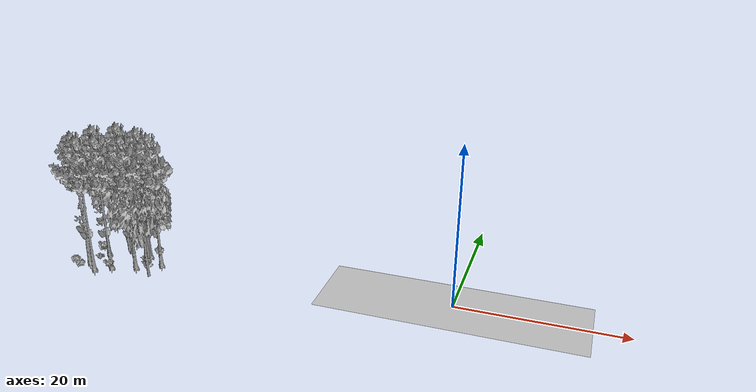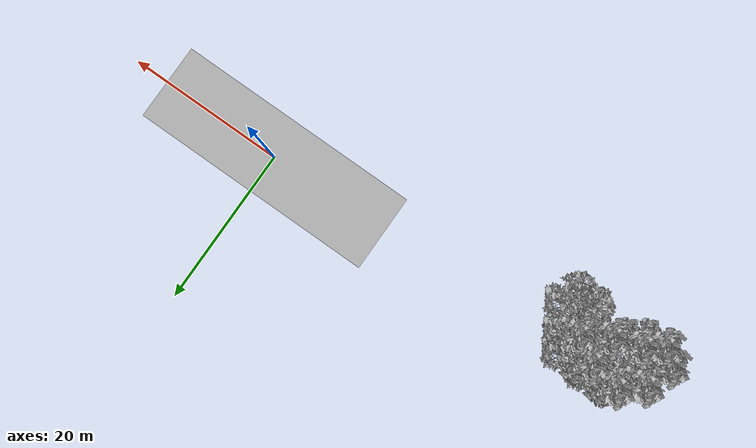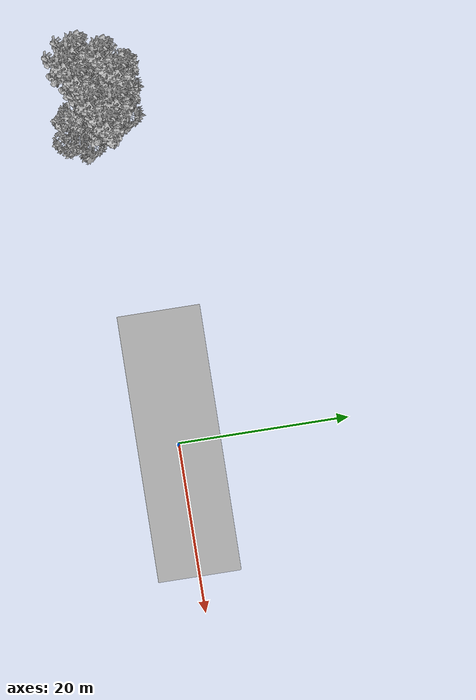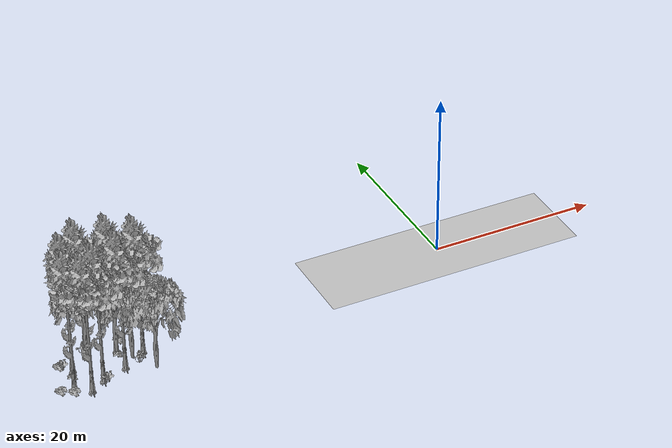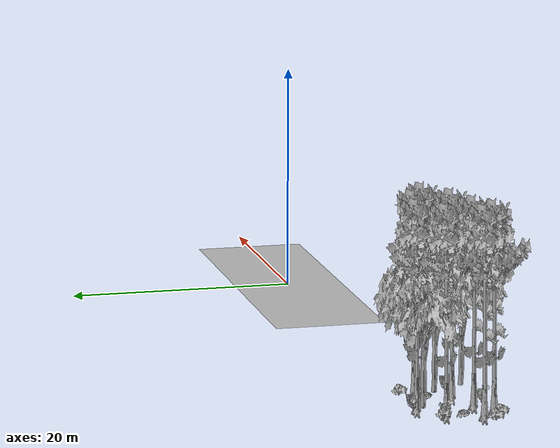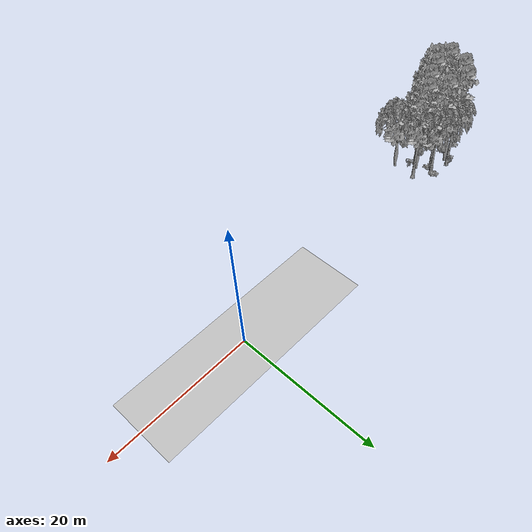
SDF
<sdf version="1.7">
 <world name="default">
  <model name="ground_plane">
   <static>1</static>
   <link name="link">
    <collision name="collision">
     <geometry><plane><normal>0 0 1</normal><size>100 100</size></plane></geometry>
     <surface><contact><ode><min_depth>0.01</min_depth><max_vel>0</max_vel></ode></contact></surface>
    </collision>
    <visual name="grass">
     <cast_shadows>0</cast_shadows>
     <geometry>
      <mesh>
       <scale>0.5814285714285714 0.18142857142857144 0.1</scale>
       <uri>file://grass_plane/meshes/grass_plane.dae</uri>
      </mesh>
     </geometry>
    </visual>
   </link>
  </model>
  <model name="Tree 46">
   <static>1</static>
   <pose>-44.90712140454128 -6.046860425812978 0 1.57079 -0 0</pose>
   <link name="link">
    <collision name="collision">
     <geometry><mesh><scale>3.5 5 3.5</scale><uri>model://tree_9/meshes/tree_9.obj</uri></mesh></geometry>
    </collision>
    <visual name="visual">
     <geometry><mesh><scale>3.5 5 3.5</scale><uri>model://tree_9/meshes/tree_9.obj</uri></mesh></geometry>
    </visual>
   </link>
  </model>
  <model name="Tree 71">
   <static>1</static>
   <pose>-40.07375842830051 -0.9504066417509272 0 1.57079 -0 0</pose>
   <link name="link">
    <collision name="collision">
     <geometry><mesh><scale>3.5 5 3.5</scale><uri>model://tree_2/meshes/tree_2.obj</uri></mesh></geometry>
    </collision>
    <visual name="visual">
     <geometry><mesh><scale>3.5 5 3.5</scale><uri>model://tree_2/meshes/tree_2.obj</uri></mesh></geometry>
    </visual>
   </link>
  </model>
  <model name="Tree 75">
   <static>1</static>
   <pose>-40.19841821058101 -3.881830244875937 0 1.57079 -0 0</pose>
   <link name="link">
    <collision name="collision">
     <geometry><mesh><scale>3.5 5 3.5</scale><uri>model://tree_9/meshes/tree_9.obj</uri></mesh></geometry>
    </collision>
    <visual name="visual">
     <geometry><mesh><scale>3.5 5 3.5</scale><uri>model://tree_9/meshes/tree_9.obj</uri></mesh></geometry>
    </visual>
   </link>
  </model>
  <model name="Tree 91">
   <static>1</static>
   <pose>-43.34845785759134 -0.6230948567371097 0 1.57079 -0 0</pose>
   <link name="link">
    <collision name="collision">
     <geometry><mesh><scale>3.5 5 3.5</scale><uri>model://tree_2/meshes/tree_2.obj</uri></mesh></geometry>
    </collision>
    <visual name="visual">
     <geometry><mesh><scale>3.5 5 3.5</scale><uri>model://tree_2/meshes/tree_2.obj</uri></mesh></geometry>
    </visual>
   </link>
  </model>
  <model name="Tree 125">
   <static>1</static>
   <pose>-43.28096285363683 -0.07371597255941786 0 1.57079 -0 0</pose>
   <link name="link">
    <collision name="collision">
     <geometry><mesh><scale>3.5 5 3.5</scale><uri>model://tree_9/meshes/tree_9.obj</uri></mesh></geometry>
    </collision>
    <visual name="visual">
     <geometry><mesh><scale>3.5 5 3.5</scale><uri>model://tree_9/meshes/tree_9.obj</uri></mesh></geometry>
    </visual>
   </link>
  </model>
  <model name="Tree 187">
   <static>1</static>
   <pose>-38.98577155696957 -2.786650078604776 0 1.57079 -0 0</pose>
   <link name="link">
    <collision name="collision">
     <geometry><mesh><scale>3.5 5 3.5</scale><uri>model://tree_2/meshes/tree_2.obj</uri></mesh></geometry>
    </collision>
    <visual name="visual">
     <geometry><mesh><scale>3.5 5 3.5</scale><uri>model://tree_2/meshes/tree_2.obj</uri></mesh></geometry>
    </visual>
   </link>
  </model>
  <model name="Tree 231">
   <static>1</static>
   <pose>-37.308246322423855 -5.543815113508479 0 1.57079 -0 0</pose>
   <link name="link">
    <collision name="collision">
     <geometry><mesh><scale>3.5 5 3.5</scale><uri>model://tree_2/meshes/tree_2.obj</uri></mesh></geometry>
    </collision>
    <visual name="visual">
     <geometry><mesh><scale>3.5 5 3.5</scale><uri>model://tree_2/meshes/tree_2.obj</uri></mesh></geometry>
    </visual>
   </link>
  </model>
  <model name="Tree 262">
   <static>1</static>
   <pose>-43.14840373944902 -4.882012418049333 0 1.57079 -0 0</pose>
   <link name="link">
    <collision name="collision">
     <geometry><mesh><scale>3.5 5 3.5</scale><uri>model://tree_9/meshes/tree_9.obj</uri></mesh></geometry>
    </collision>
    <visual name="visual">
     <geometry><mesh><scale>3.5 5 3.5</scale><uri>model://tree_9/meshes/tree_9.obj</uri></mesh></geometry>
    </visual>
   </link>
  </model>
  <model name="Tree 285">
   <static>1</static>
   <pose>-37.44203459075023 -2.221854879510559 0 1.57079 -0 0</pose>
   <link name="link">
    <collision name="collision">
     <geometry><mesh><scale>3.5 5 3.5</scale><uri>model://tree_9/meshes/tree_9.obj</uri></mesh></geometry>
    </collision>
    <visual name="visual">
     <geometry><mesh><scale>3.5 5 3.5</scale><uri>model://tree_9/meshes/tree_9.obj</uri></mesh></geometry>
    </visual>
   </link>
  </model>
  <model name="Tree 342">
   <static>1</static>
   <pose>-46.4678958579835 -4.777937752286533 0 1.57079 -0 0</pose>
   <link name="link">
    <collision name="collision">
     <geometry><mesh><scale>3.5 5 3.5</scale><uri>model://tree_9/meshes/tree_9.obj</uri></mesh></geometry>
    </collision>
    <visual name="visual">
     <geometry><mesh><scale>3.5 5 3.5</scale><uri>model://tree_9/meshes/tree_9.obj</uri></mesh></geometry>
    </visual>
   </link>
  </model>
  <model name="Tree 408">
   <static>1</static>
   <pose>-39.974789053675316 -0.726057567128418 0 1.57079 -0 0</pose>
   <link name="link">
    <collision name="collision">
     <geometry><mesh><scale>3.5 5 3.5</scale><uri>model://tree_9/meshes/tree_9.obj</uri></mesh></geometry>
    </collision>
    <visual name="visual">
     <geometry><mesh><scale>3.5 5 3.5</scale><uri>model://tree_9/meshes/tree_9.obj</uri></mesh></geometry>
    </visual>
   </link>
  </model>
  <model name="Tree 443">
   <static>1</static>
   <pose>-45.51338046859431 -1.8970235224369567 0 1.57079 -0 0</pose>
   <link name="link">
    <collision name="collision">
     <geometry><mesh><scale>3.5 5 3.5</scale><uri>model://tree_9/meshes/tree_9.obj</uri></mesh></geometry>
    </collision>
    <visual name="visual">
     <geometry><mesh><scale>3.5 5 3.5</scale><uri>model://tree_9/meshes/tree_9.obj</uri></mesh></geometry>
    </visual>
   </link>
  </model>
  <model name="Bush 20">
   <static>1</static>
   <pose>-39.18001070116024 0.3009793043583233 0 1.57079 -0 0</pose>
   <link name="link">
    <collision name="collision">
     <geometry><mesh><scale>2 2 2</scale><uri>model://bush_3/meshes/bush_3.obj</uri></mesh></geometry>
     <surface><contact><collide_without_contact>false</collide_without_contact></contact></surface>
    </collision>
    <visual name="visual">
     <geometry><mesh><scale>2 2 2</scale><uri>model://bush_3/meshes/bush_3.obj</uri></mesh></geometry>
    </visual>
   </link>
  </model>
  <model name="Bush 73">
   <static>1</static>
   <pose>-40.210396718421244 -1.7339999420018586 0 1.57079 -0 0</pose>
   <link name="link">
    <collision name="collision">
     <geometry><mesh><scale>2 2 2</scale><uri>model://bush_2/meshes/bush_2.obj</uri></mesh></geometry>
     <surface><contact><collide_without_contact>false</collide_without_contact></contact></surface>
    </collision>
    <visual name="visual">
     <geometry><mesh><scale>2 2 2</scale><uri>model://bush_2/meshes/bush_2.obj</uri></mesh></geometry>
    </visual>
   </link>
  </model>
  <model name="Bush 101">
   <static>1</static>
   <pose>-42.821503271440214 -5.623151856617547 0 1.57079 -0 0</pose>
   <link name="link">
    <collision name="collision">
     <geometry><mesh><scale>2 2 2</scale><uri>model://bush_0/meshes/bush_0.obj</uri></mesh></geometry>
     <surface><contact><collide_without_contact>false</collide_without_contact></contact></surface>
    </collision>
    <visual name="visual">
     <geometry><mesh><scale>2 2 2</scale><uri>model://bush_0/meshes/bush_0.obj</uri></mesh></geometry>
    </visual>
   </link>
  </model>
  <model name="Bush 174">
   <static>1</static>
   <pose>-46.751581431914936 -1.2583122158692994 0 1.57079 -0 0</pose>
   <link name="link">
    <collision name="collision">
     <geometry><mesh><scale>2 2 2</scale><uri>model://bush_3/meshes/bush_3.obj</uri></mesh></geometry>
     <surface><contact><collide_without_contact>false</collide_without_contact></contact></surface>
    </collision>
    <visual name="visual">
     <geometry><mesh><scale>2 2 2</scale><uri>model://bush_3/meshes/bush_3.obj</uri></mesh></geometry>
    </visual>
   </link>
  </model>
  <model name="Bush 193">
   <static>1</static>
   <pose>-48.08833500397807 -5.264194442857422 0 1.57079 -0 0</pose>
   <link name="link">
    <collision name="collision">
     <geometry><mesh><scale>2 2 2</scale><uri>model://bush_3/meshes/bush_3.obj</uri></mesh></geometry>
     <surface><contact><collide_without_contact>false</collide_without_contact></contact></surface>
    </collision>
    <visual name="visual">
     <geometry><mesh><scale>2 2 2</scale><uri>model://bush_3/meshes/bush_3.obj</uri></mesh></geometry>
    </visual>
   </link>
  </model>
  <model name="Bush 198">
   <static>1</static>
   <pose>-46.843576706054534 -6.017553308135518 0 1.57079 -0 0</pose>
   <link name="link">
    <collision name="collision">
     <geometry><mesh><scale>2 2 2</scale><uri>model://bush_3/meshes/bush_3.obj</uri></mesh></geometry>
     <surface><contact><collide_without_contact>false</collide_without_contact></contact></surface>
    </collision>
    <visual name="visual">
     <geometry><mesh><scale>2 2 2</scale><uri>model://bush_3/meshes/bush_3.obj</uri></mesh></geometry>
    </visual>
   </link>
  </model>
  <model name="Bush 282">
   <static>1</static>
   <pose>-38.538403777608714 -3.9420834840841543 0 1.57079 -0 0</pose>
   <link name="link">
    <collision name="collision">
     <geometry><mesh><scale>2 2 2</scale><uri>model://bush_4/meshes/bush_4.obj</uri></mesh></geometry>
     <surface><contact><collide_without_contact>false</collide_without_contact></contact></surface>
    </collision>
    <visual name="visual">
     <geometry><mesh><scale>2 2 2</scale><uri>model://bush_4/meshes/bush_4.obj</uri></mesh></geometry>
    </visual>
   </link>
  </model>
  <model name="Bush 285">
   <static>1</static>
   <pose>-46.062179013494834 -3.1970549198075062 0 1.57079 -0 0</pose>
   <link name="link">
    <collision name="collision">
     <geometry><mesh><scale>2 2 2</scale><uri>model://bush_2/meshes/bush_2.obj</uri></mesh></geometry>
     <surface><contact><collide_without_contact>false</collide_without_contact></contact></surface>
    </collision>
    <visual name="visual">
     <geometry><mesh><scale>2 2 2</scale><uri>model://bush_2/meshes/bush_2.obj</uri></mesh></geometry>
    </visual>
   </link>
  </model>
  <model name="Bush 320">
   <static>1</static>
   <pose>-43.398129598892666 0.22924286678124695 0 1.57079 -0 0</pose>
   <link name="link">
    <collision name="collision">
     <geometry><mesh><scale>2 2 2</scale><uri>model://bush_4/meshes/bush_4.obj</uri></mesh></geometry>
     <surface><contact><collide_without_contact>false</collide_without_contact></contact></surface>
    </collision>
    <visual name="visual">
     <geometry><mesh><scale>2 2 2</scale><uri>model://bush_4/meshes/bush_4.obj</uri></mesh></geometry>
    </visual>
   </link>
  </model>
  <model name="Bush 326">
   <static>1</static>
   <pose>-46.45098543107384 -1.543344171615674 0 1.57079 -0 0</pose>
   <link name="link">
    <collision name="collision">
     <geometry><mesh><scale>2 2 2</scale><uri>model://bush_0/meshes/bush_0.obj</uri></mesh></geometry>
     <surface><contact><collide_without_contact>false</collide_without_contact></contact></surface>
    </collision>
    <visual name="visual">
     <geometry><mesh><scale>2 2 2</scale><uri>model://bush_0/meshes/bush_0.obj</uri></mesh></geometry>
    </visual>
   </link>
  </model>
 </world>
</sdf>
